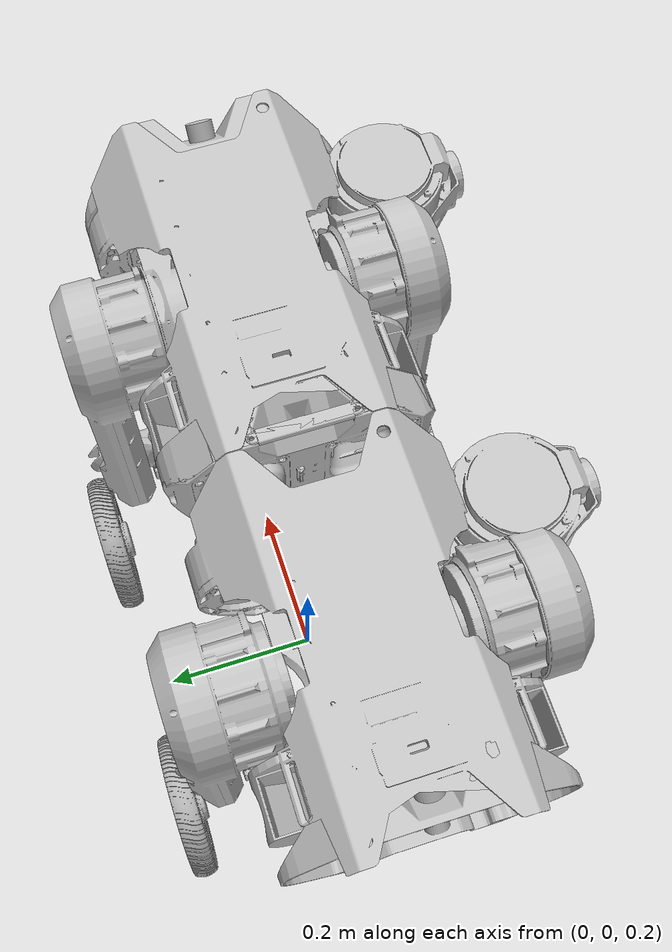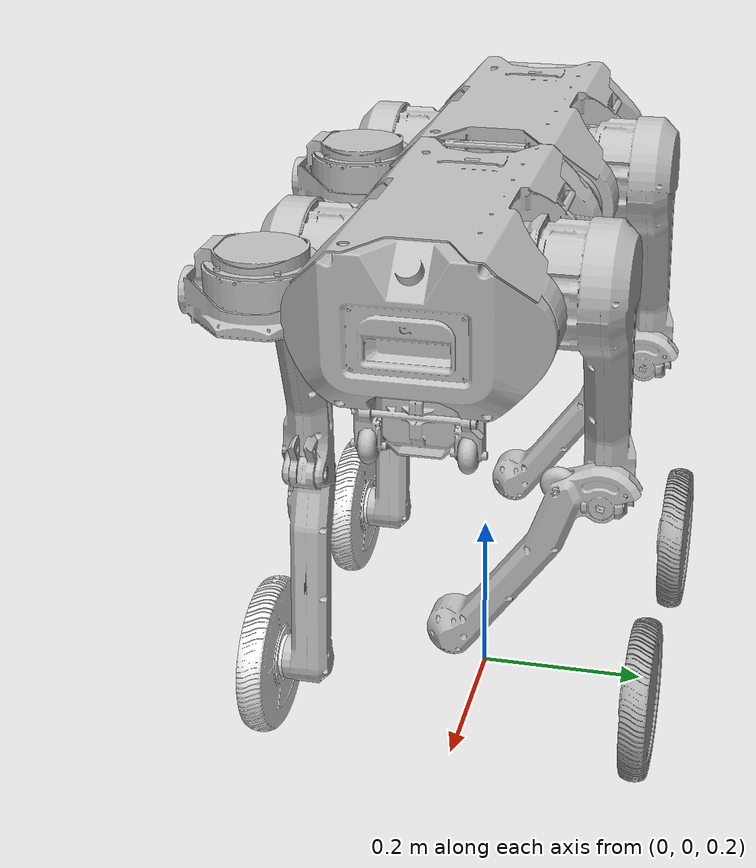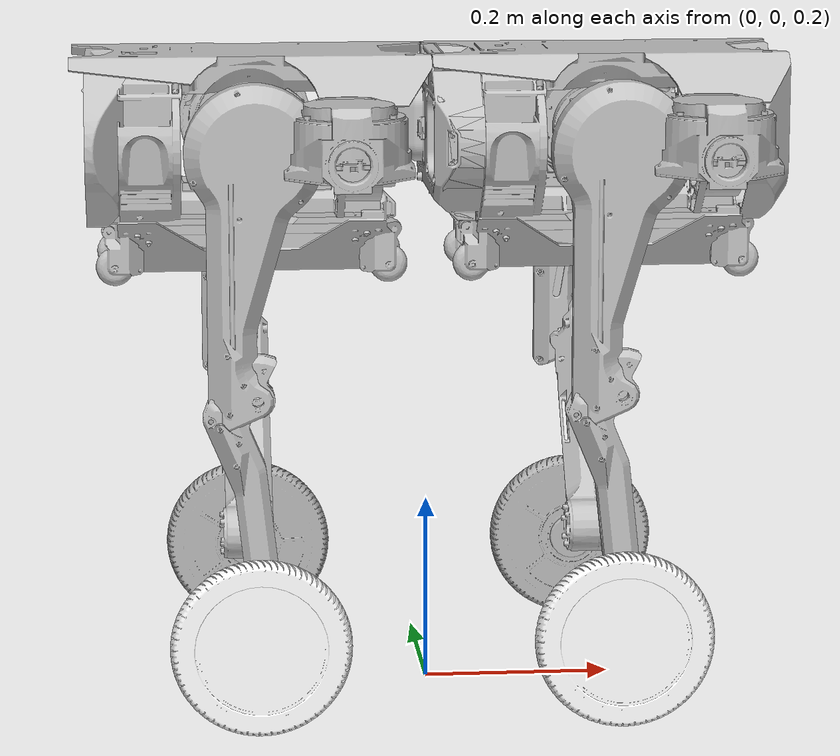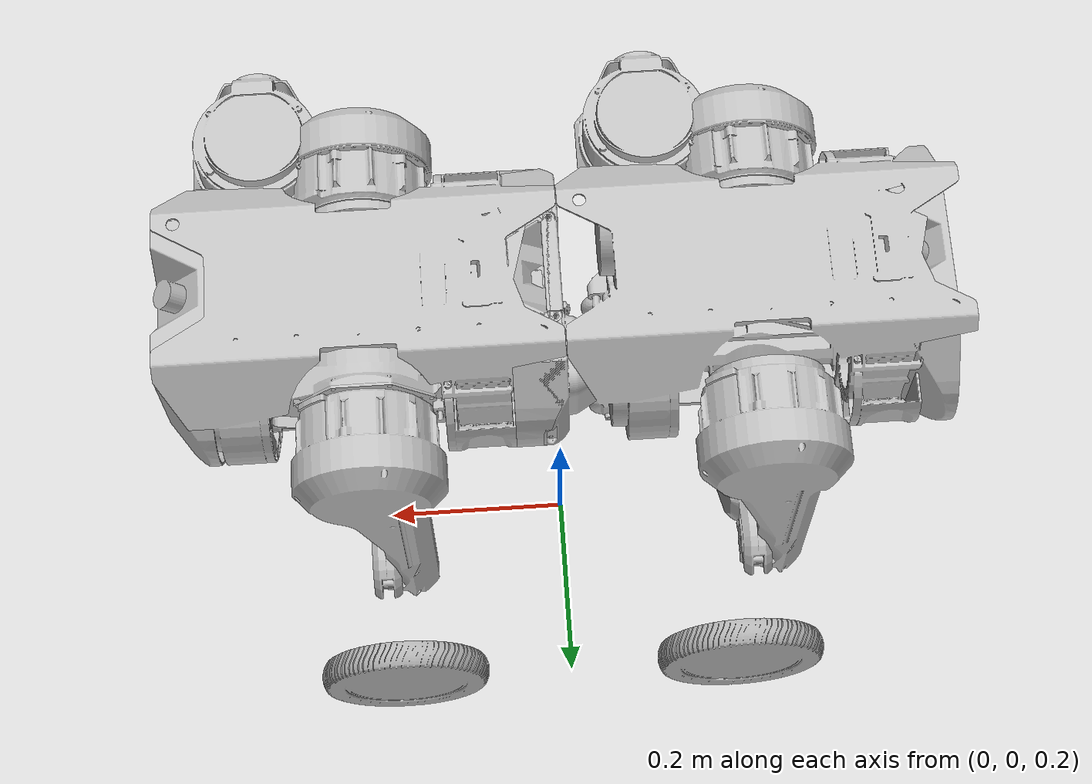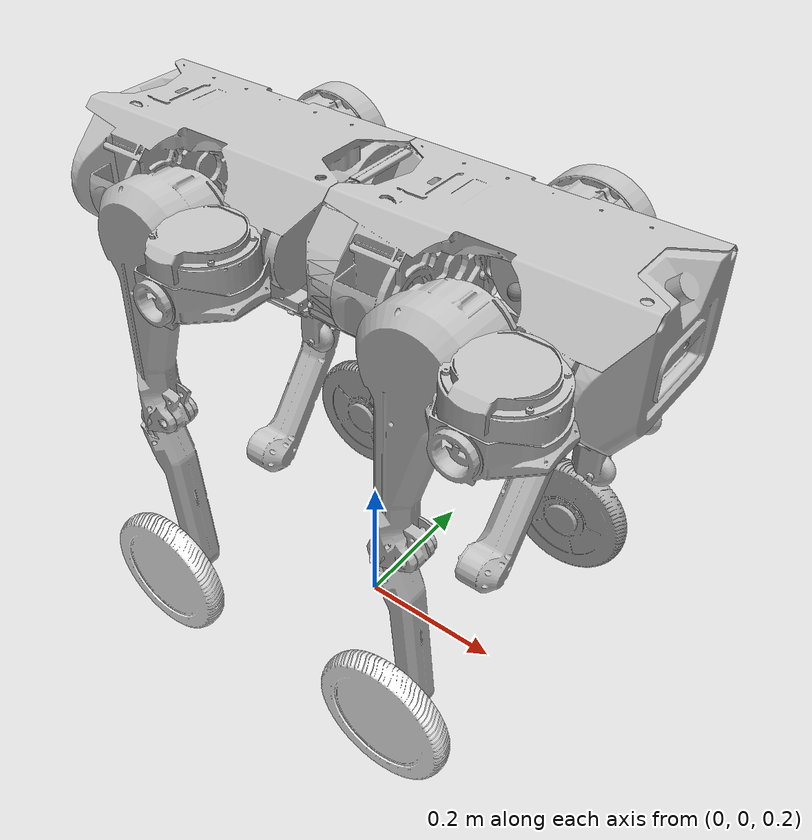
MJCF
<mujoco model="d1_new_description">
  <compiler angle="radian" meshdir="../meshes/" autolimits="true"/>

  <default>
    <default class="d1_new">
      <geom friction="0.4" margin="0.001" condim="1"/>
      <joint axis="0 1 0" damping="0.1" armature="0.01" frictionloss="0.2"/>
      <default class="visual">
        <geom type="mesh" contype="0" conaffinity="0" group="2" density="0"/>
      </default>
      <default class="collision">
        <geom group="3" />
      </default>
    </default>
  </default>

  <asset>
    <mesh name="base_link" file="base_link.STL"/>
    <mesh name="funtion_Link" file="funtion_Link.STL"/>
    <mesh name="docking_Link" file="docking_Link.STL"/>
    <mesh name="L_hip" file="L_hip.STL"/>
    <mesh name="L_thigh" file="L_thigh.STL"/>
    <mesh name="L_calf" file="L_calf.STL"/>
    <mesh name="L_foot" file="L_foot.STL"/>
    <mesh name="R_hip" file="R_hip.STL"/>
    <mesh name="R_thigh" file="R_thigh.STL"/>
    <mesh name="R_calf" file="R_calf.STL"/>
    <mesh name="R_foot" file="R_foot.STL"/>
  </asset>

  <worldbody>
    <!-- base link -->
    <body name="base_link" pos="0 0 0.8" childclass="d1_new">
      <joint name="floating_base_joint" type="free" limited="false" actuatorfrclimited="false"/>
      <!-- imu link -->
      <body name="imu_link"/>
      <!-- F_base_link -->
      <body name="F_base_link" pos="0.1875 0 0">
        <site name="trunk_imu" size="0.01"/>

        <inertial pos="0 0.00019692 -0.0108495" quat="0.0125272 0.707037 0.00989149 0.706997" mass="8.44614" diaginertia="0.116975 0.115879 0.0525653"/>
        <geom name="F_base_link_visual" pos="0.0 0 0" quat="1 0 0 0" type="mesh" class="visual" rgba="0.75294 0.75294 0.75294 1" mesh="base_link"/>
        <geom name="F_base_link_collision" class="collision" size="0.1375 0.075 0.0875" type="box" rgba="0.75294 0.75294 0.75294 1"/>
        <!-- F function link -->
        <body name="F_funtion_link" pos="0.1545 0 0">
          <geom name="F_funtion_link_visual" pos="0 0 0" quat="1 0 0 0" type="mesh" class="visual" rgba="0.75294 0.75294 0.75294 1" mesh="funtion_Link"/>
          <geom name="F_funtion_link_collision" class="collision" size="0.02475 0.075 0.0875" pos="0.008 0 0" type="box" rgba="0.75294 0.75294 0.75294 1"/>
        </body>
        <!-- F docking link -->
        <body name="F_docking_link" pos="-0.187 0 0">
          <geom name="F_docking_link_visual" pos="0 0 0" quat="1 0 0 0" type="mesh" class="visual" rgba="0.75294 0.75294 0.75294 1" mesh="docking_Link"/>
          <geom name="F_docking_link_collision" class="collision" size="0.04255 0.075 0.0875" pos="0.0065 0 0" type="box" rgba="0.75294 0.75294 0.75294 1"/>
        </body>
        <!-- FL hip -->
        <body name="FL_hip" pos="0.0945 0.0775 0" quat="0.499998 0.5 0.500002 0.5">
          <inertial pos="-0.0181435 -7.96e-06 -0.0936513" quat="0.999969 0.002505 0.00743808 -9.41679e-05" mass="1.69464" diaginertia="0.00379302 0.0027607 0.00214447"/>
          <geom name="FL_hip_visual" type="mesh" class="visual" rgba="0.75294 0.75294 0.75294 1" mesh="L_hip"/>
          <joint name="FL_hip_joint" pos="0 0 0" axis="0 0 1" range="-0.785398 0.785398" actuatorfrcrange="-80 80"/>

          <!-- FL thigh -->
          <body name="FL_thigh" pos="0.0905 0 -0.0945" quat="0.500098 -0.5001 0.499902 -0.4999">
            <inertial pos="0.0289509 0.00356333 -0.0281156" quat="-0.0769104 0.652025 5.23527e-05 0.754286" mass="2.55232" diaginertia="0.0182972 0.0174693 0.00380065"/>
            <geom name="FL_thigh_visual" type="mesh" class="visual" rgba="0.75294 0.75294 0.75294 1" mesh="L_thigh"/>
            <geom name="FL_thigh_collision" class="collision" size="0.13 0.045 0.025" pos="0.06 0.02 0" quat="0.991445 0 0 0.130526" type="box" rgba="0.75294 0.75294 0.75294 1"/>
            <joint name="FL_thigh_joint" pos="0 0 0" axis="0 0 1" range="-1.8326 3.40339" actuatorfrcrange="-80 80"/>

            <!-- FL calf -->
            <body name="FL_calf" pos="0.25 0 0">
              <inertial pos="0.125063 0.00606587 0.00312587" quat="-0.0425827 0.690156 -0.0920102 0.716523" mass="0.46345" diaginertia="0.00494513 0.00490922 0.000208685"/>
              <geom name="FL_calf_visual" type="mesh" class="visual" rgba="0.75294 0.75294 0.75294 1" mesh="L_calf"/>
              <geom name="FL_calf_collision" class="collision" size="0.12 0.02 0.025" pos="0.15 0.01 0" quat="0.9992 0 0 -0.0399893" type="box" rgba="0.75294 0.75294 0.75294 1"/>
              <joint name="FL_calf_joint" pos="0 0 0" axis="0 0 1" range="-2.775 -0.855" actuatorfrcrange="-80 80"/>

              <!-- FL foot -->
              <body name="FL_foot" pos="0.25 0 0.052166">
                <inertial pos="-2.82e-06 0 -0.00091845" quat="0.334356 0.623085 -0.334302 0.623067" mass="1.6631" diaginertia="0.00760863 0.00398501 0.00393673"/>
                <geom name="FL_foot_visual" type="mesh" class="visual" rgba="0.698039 0.698039 0.698039 1" mesh="L_foot"/>
                <geom name="FL_foot_collision" class="collision" size="0.087 0.02" type="cylinder" rgba="0.698039 0.698039 0.698039 1"/>
                <joint name="FL_foot_joint" pos="0 0 0" axis="0 0 1" range="-1000000 1000000" actuatorfrcrange="-12 12"/>
              </body>
            </body>
          </body>
        </body>

        <!-- FR hip -->
        <body name="FR_hip" pos="0.0945 -0.0775 0" quat="0.499998 0.5 0.500002 0.5">
          <inertial pos="0.0181435 -8e-06 -0.0936513" quat="0.999969 0.002505 -0.00743808 9.41679e-05" mass="1.69464" diaginertia="0.00379302 0.0027607 0.00214447"/>
          <geom name="FR_hip_visual" type="mesh" class="visual" rgba="0.75294 0.75294 0.75294 1" mesh="R_hip"/>
          <joint name="FR_hip_joint" pos="0 0 0" axis="0 0 1" range="-0.785398 0.785398" actuatorfrcrange="-80 80"/>

          <!-- FR thigh -->
          <body name="FR_thigh" pos="-0.0905 0 -0.0945" quat="0.499898 -0.4999 0.500102 -0.5001">
            <inertial pos="0.0291816 0.00370278 0.0281157" quat="0.00133055 0.754556 0.0787582 0.651491" mass="2.55232" diaginertia="0.0182666 0.0174178 0.0038092"/>
            <geom name="FR_thigh_visual" type="mesh" class="visual" rgba="0.752941 0.752941 0.752941 1" mesh="R_thigh"/>
            <geom name="FR_thigh_collision" class="collision" size="0.13 0.045 0.025" pos="0.06 0.02 0" quat="0.991445 0 0 0.130526" type="box" rgba="0.752941 0.752941 0.752941 1"/>
            <joint name="FR_thigh_joint" pos="0 0 0" axis="0 0 1" range="-1.8326 3.40339" actuatorfrcrange="-80 80"/>

            <!-- FR calf -->
            <body name="FR_calf" pos="0.25 0 0">
              <inertial pos="0.125064 0.00606606 -0.0031258" quat="0.0919975 0.716523 0.0425713 0.690159" mass="0.463455" diaginertia="0.00494517 0.00490926 0.000208687"/>
              <geom name="FR_calf_visual" type="mesh" class="visual" rgba="0.752941 0.752941 0.752941 1" mesh="R_calf"/>
              <geom name="FR_calf_collision" class="collision" size="0.12 0.02 0.025" pos="0.15 0.01 0" quat="0.9992 0 0 -0.0399893" type="box" rgba="0.752941 0.752941 0.752941 1"/>
              <joint name="FR_calf_joint" pos="0 0 0" axis="0 0 1" range="-2.775 -0.855" actuatorfrcrange="-80 80"/>

              <!-- FR foot -->
              <body name="FR_foot" pos="0.25 0 -0.052166" quat="0.363988 0 0 0.931404">
                <inertial pos="-2.78e-06 0 0.00091859" quat="0.333846 0.623312 -0.3339 0.62333" mass="1.6631" diaginertia="0.00760867 0.00398497 0.0039368"/>
                <geom name="FR_foot_visual" type="mesh" class="visual" rgba="1 1 1 1" mesh="R_foot"/>
                <geom name="FR_foot_collision" class="collision" size="0.087 0.02" type="cylinder" rgba="1 1 1 1"/>
                <joint name="FR_foot_joint" pos="0 0 0" axis="0 0 1" range="-1000000 1000000" actuatorfrcrange="-12 12"/>
              </body>
            </body>
          </body>
        </body>
      </body>

      <!-- R base link -->
      <body name="R_base_link" pos="-0.1875 0 0">
        <inertial pos="0 0.00019692 -0.0108495" quat="0.0125272 0.707037 0.00989149 0.706997" mass="8.44614" diaginertia="0.116975 0.115879 0.0525653"/>
        <geom name="R_base_link_visual" pos="0 0 0" quat="1 0 0 0" type="mesh" class="visual" rgba="0.75294 0.75294 0.75294 1" mesh="base_link"/>
        <geom name="R_base_link_collision" class="collision" size="0.1375 0.075 0.0875" type="box" rgba="0.75294 0.75294 0.75294 1"/>

        <!-- R function link -->
        <body name="R_function_link" pos="-0.1545 0 0" quat="1.32679e-06 0 0 1">
          <geom name="R_function_link_visual" pos="0 0 0" quat="1.32679e-06 0 0 1" type="mesh" class="visual" rgba="0.75294 0.75294 0.75294 1" mesh="funtion_Link"/>
          <geom name="R_function_link_collision" class="collision" size="0.02475 0.075 0.0875" pos="0.008 0 0" type="box" rgba="0.75294 0.75294 0.75294 1"/>
        </body>

        <!-- R docking link -->
        <body name="R_docking_link" pos="0.187 0 0" quat="1.32679e-06 0 0 1">
          <geom name="R_docking_link_visual" pos="0 0 0" quat="1.32679e-06 0 0 1" type="mesh" class="visual" rgba="0.75294 0.75294 0.75294 1" mesh="docking_Link"/>
          <geom name="R_docking_link_collision" class="collision" size="0.04255 0.075 0.0875" pos="0.0065 0 0" type="box" rgba="0.75294 0.75294 0.75294 1"/>
        </body>

        <!-- RL hip -->
        <body name="RL_hip" pos="0.0945 0.0775 0" quat="0.499998 0.5 0.500002 0.5">
          <inertial pos="-0.0181435 -7.96e-06 -0.0936513" quat="0.999969 0.002505 0.00743808 -9.41679e-05" mass="1.69464" diaginertia="0.00379302 0.0027607 0.00214447"/>
          <joint name="RL_hip_joint" pos="0 0 0" axis="0 0 1" range="-0.785398 0.785398" actuatorfrcrange="-80 80"/>

          <!-- RL thigh -->
          <body name="RL_thigh" pos="0.0905 0 -0.0945" quat="0.500098 -0.5001 0.499902 -0.4999">
            <inertial pos="0.0289509 0.00356333 -0.0281156" quat="-0.0769104 0.652025 5.23527e-05 0.754286" mass="2.55232" diaginertia="0.0182972 0.0174693 0.00380065"/>
            <geom name="RL_thigh_visual" type="mesh" class="visual" rgba="0.75294 0.75294 0.75294 1" mesh="L_thigh"/>
            <geom name="RL_thigh_collision" class="collision" size="0.13 0.045 0.025" pos="0.06 0.02 0" quat="0.991445 0 0 0.130526" type="box" rgba="0.75294 0.75294 0.75294 1"/>
            <joint name="RL_thigh_joint" pos="0 0 0" axis="0 0 1" range="-1.8326 3.40339" actuatorfrcrange="-80 80"/>

            <!-- RL calf -->
            <body name="RL_calf" pos="0.25 0 0">
              <inertial pos="0.125063 0.00606587 0.00312587" quat="-0.0425827 0.690156 -0.0920102 0.716523" mass="0.46345" diaginertia="0.00494513 0.00490922 0.000208685"/>
              <geom name="RL_calf_visual" type="mesh" class="visual" rgba="0.75294 0.75294 0.75294 1" mesh="L_calf"/>
              <geom name="RL_calf_collsion" class="collision" size="0.12 0.02 0.025" pos="0.15 0.01 0" quat="0.9992 0 0 -0.0399893" type="box" rgba="0.75294 0.75294 0.75294 1"/>
              <joint name="RL_calf_joint" pos="0 0 0" axis="0 0 1" range="-2.775 -0.855" actuatorfrcrange="-80 80"/>

              <!-- RL foot -->
              <body name="RL_foot" pos="0.25 0 0.052166">
                <inertial pos="-2.82e-06 0 -0.00091845" quat="0.334356 0.623085 -0.334302 0.623067" mass="1.6631" diaginertia="0.00760863 0.00398501 0.00393673"/>
                <geom name="RL_foot_visual" type="mesh" class="visual" rgba="0.698039 0.698039 0.698039 1" mesh="L_foot"/>
                <geom name="RL_foot_collision" class="collision" size="0.087 0.02" type="cylinder" rgba="0.698039 0.698039 0.698039 1"/>
                <joint name="RL_foot_joint" pos="0 0 0" axis="0 0 1" range="-1000000 1000000" actuatorfrcrange="-12 12"/>
              </body>
            </body>
          </body>
        </body>

        <!-- RR hip -->
        <body name="RR_hip" pos="0.0945 -0.0775 0" quat="0.499998 0.5 0.500002 0.5">
          <inertial pos="0.0181435 -8e-06 -0.0936513" quat="0.999969 0.002505 -0.00743808 9.41679e-05" mass="1.69464" diaginertia="0.00379302 0.0027607 0.00214447"/>
          <geom name="RR_hip_visual" type="mesh" class="visual" rgba="0.75294 0.75294 0.75294 1" mesh="R_hip"/>
          <joint name="RR_hip_joint" pos="0 0 0" axis="0 0 1" range="-0.785398 0.785398" actuatorfrcrange="-80 80"/>

          <!-- RR thigh -->
          <body name="RR_thigh" pos="-0.0905 0 -0.0945" quat="0.499898 -0.4999 0.500102 -0.5001">
            <inertial pos="0.0291816 0.00370278 0.0281157" quat="0.00133055 0.754556 0.0787582 0.651491" mass="2.55232" diaginertia="0.0182666 0.0174178 0.0038092"/>
            <geom name="RR_thigh_visual" type="mesh" class="visual" rgba="0.752941 0.752941 0.752941 1" mesh="R_thigh"/>
            <geom name="RR_thigh_collision" class="collision" size="0.13 0.045 0.025" pos="0.06 0.02 0" quat="0.991445 0 0 0.130526" type="box" rgba="0.752941 0.752941 0.752941 1"/>
            <joint name="RR_thigh_joint" pos="0 0 0" axis="0 0 1" range="-1.8326 3.40339" actuatorfrcrange="-80 80"/>

            <!-- RR calf -->
            <body name="RR_calf" pos="0.25 0 0">
              <inertial pos="0.125064 0.00606606 -0.0031258" quat="0.0919975 0.716523 0.0425713 0.690159" mass="0.463455" diaginertia="0.00494517 0.00490926 0.000208687"/>
              <geom name="RR_calf_visual" type="mesh" class="visual" rgba="0.752941 0.752941 0.752941 1" mesh="R_calf"/>
              <geom name="RR_calf_collision" class="collision" size="0.12 0.02 0.025" pos="0.15 0.01 0" quat="0.9992 0 0 -0.0399893" type="box" rgba="0.752941 0.752941 0.752941 1"/>
              <joint name="RR_calf_joint" pos="0 0 0" axis="0 0 1" range="-2.775 -0.855" actuatorfrcrange="-80 80"/>

              <!-- RR foot -->
              <body name="RR_foot" pos="0.25 0 -0.052166" quat="0.363988 0 0 0.931404">
                <inertial pos="-2.78e-06 0 0.00091859" quat="0.333846 0.623312 -0.3339 0.62333" mass="1.6631" diaginertia="0.00760867 0.00398497 0.0039368"/>
                <geom name="RR_foot_visual" type="mesh" class="visual" rgba="1 1 1 1" mesh="R_foot"/>
                <geom name="RR_foot_collision" class="collision" size="0.087 0.02" type="cylinder" rgba="1 1 1 1"/>
                <joint name="RR_foot_joint" pos="0 0 0" axis="0 0 1" range="-1000000 1000000" actuatorfrcrange="-12 12"/>
              </body>
            </body>
          </body>
        </body>
      </body>
    </body>
  </worldbody>
    <actuator>
    <motor name="FL_hip" joint="FL_hip_joint" />
    <motor name="FL_thigh" joint="FL_thigh_joint" />
    <motor name="FL_calf" joint="FL_calf_joint" />
    <motor name="FL_foot" joint="FL_foot_joint" />

    <motor name="FR_hip" joint="FR_hip_joint" />
    <motor name="FR_thigh" joint="FR_thigh_joint" />
    <motor name="FR_calf" joint="FR_calf_joint" />
    <motor name="FR_foot" joint="FR_foot_joint" />

    <motor name="RL_hip" joint="RL_hip_joint" />
    <motor name="RL_thigh" joint="RL_thigh_joint" />
    <motor name="RL_calf" joint="RL_calf_joint" />
    <motor name="RL_foot" joint="RL_foot_joint" />

    <motor name="RR_hip" joint="RR_hip_joint" />
    <motor name="RR_thigh" joint="RR_thigh_joint" />
    <motor name="RR_calf" joint="RR_calf_joint" />
    <motor name="RR_foot" joint="RR_foot_joint" />
  </actuator>

  <sensor>
    <jointpos name="FL_hip_pos" joint="FL_hip_joint" />
    <jointpos name="FL_thigh_pos" joint="FL_thigh_joint" />
    <jointpos name="FL_calf_pos" joint="FL_calf_joint" />
    <jointpos name="FL_foot_pos" joint="FL_foot_joint" />

    <jointpos name="FR_hip_pos" joint="FR_hip_joint" />
    <jointpos name="FR_thigh_pos" joint="FR_thigh_joint" />
    <jointpos name="FR_calf_pos" joint="FR_calf_joint" />
    <jointpos name="FR_foot_pos" joint="FR_foot_joint" />

    <jointpos name="RL_hip_pos" joint="RL_hip_joint" />
    <jointpos name="RL_thigh_pos" joint="RL_thigh_joint" />
    <jointpos name="RL_calf_pos" joint="RL_calf_joint" />
    <jointpos name="RL_foot_pos" joint="RL_foot_joint" />

    <jointpos name="RR_hip_pos" joint="RR_hip_joint" />
    <jointpos name="RR_thigh_pos" joint="RR_thigh_joint" />
    <jointpos name="RR_calf_pos" joint="RR_calf_joint" />
    <jointpos name="RR_foot_pos" joint="RR_foot_joint" />

    <jointvel name="FL_hip_vel" joint="FL_hip_joint" />
    <jointvel name="FL_thigh_vel" joint="FL_thigh_joint" />
    <jointvel name="FL_calf_vel" joint="FL_calf_joint" />
    <jointvel name="FL_foot_vel" joint="FL_foot_joint" />

    <jointvel name="FR_hip_vel" joint="FR_hip_joint" />
    <jointvel name="FR_thigh_vel" joint="FR_thigh_joint" />
    <jointvel name="FR_calf_vel" joint="FR_calf_joint" />
    <jointvel name="FR_foot_vel" joint="FR_foot_joint" />

    <jointvel name="RL_hip_vel" joint="RL_hip_joint" />
    <jointvel name="RL_thigh_vel" joint="RL_thigh_joint" />
    <jointvel name="RL_calf_vel" joint="RL_calf_joint" />
    <jointvel name="RL_foot_vel" joint="RL_foot_joint" />

    <jointvel name="RR_hip_vel" joint="RR_hip_joint" />
    <jointvel name="RR_thigh_vel" joint="RR_thigh_joint" />
    <jointvel name="RR_calf_vel" joint="RR_calf_joint" />
    <jointvel name="RR_foot_vel" joint="RR_foot_joint" />

    <jointactuatorfrc name="FL_hip_torque" joint="FL_hip_joint" noise="0.01" />
    <jointactuatorfrc name="FL_thigh_torque" joint="FL_thigh_joint" noise="0.01" />
    <jointactuatorfrc name="FL_calf_torque" joint="FL_calf_joint" noise="0.01" />
    <jointactuatorfrc name="FL_foot_torque" joint="FL_foot_joint" noise="0.01" />

    <jointactuatorfrc name="FR_hip_torque" joint="FR_hip_joint" noise="0.01" />
    <jointactuatorfrc name="FR_thigh_torque" joint="FR_thigh_joint" noise="0.01" />
    <jointactuatorfrc name="FR_calf_torque" joint="FR_calf_joint" noise="0.01" />
    <jointactuatorfrc name="FR_foot_torque" joint="FR_foot_joint" noise="0.01" />

    <jointactuatorfrc name="RL_hip_torque" joint="RL_hip_joint" noise="0.01" />
    <jointactuatorfrc name="RL_thigh_torque" joint="RL_thigh_joint" noise="0.01" />
    <jointactuatorfrc name="RL_calf_torque" joint="RL_calf_joint" noise="0.01" />
    <jointactuatorfrc name="RL_foot_torque" joint="RL_foot_joint" noise="0.01" />

    <jointactuatorfrc name="RR_hip_torque" joint="RR_hip_joint" noise="0.01" />
    <jointactuatorfrc name="RR_thigh_torque" joint="RR_thigh_joint" noise="0.01" />
    <jointactuatorfrc name="RR_calf_torque" joint="RR_calf_joint" noise="0.01" />
    <jointactuatorfrc name="RR_foot_torque" joint="RR_foot_joint" noise="0.01" />

    <framequat name="trunk_quat" objtype="site" objname="trunk_imu" />
    <gyro name="trunk_gyro" site="trunk_imu" />
    <accelerometer name="trunk_accel" site="trunk_imu" />

    <framepos name="frame_pos" objtype="site" objname="trunk_imu" />
    <framelinvel name="frame_vel" objtype="site" objname="trunk_imu" />
  </sensor>
</mujoco>
